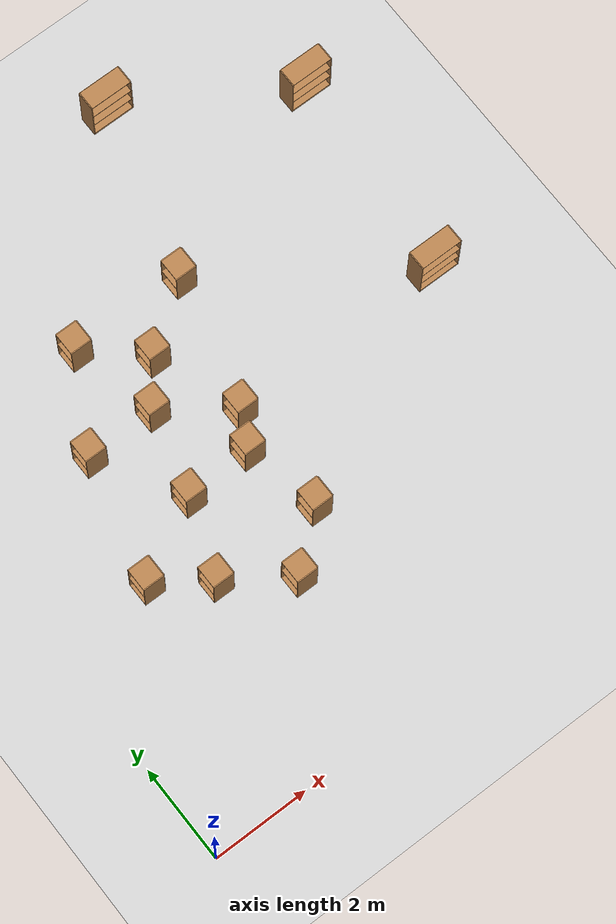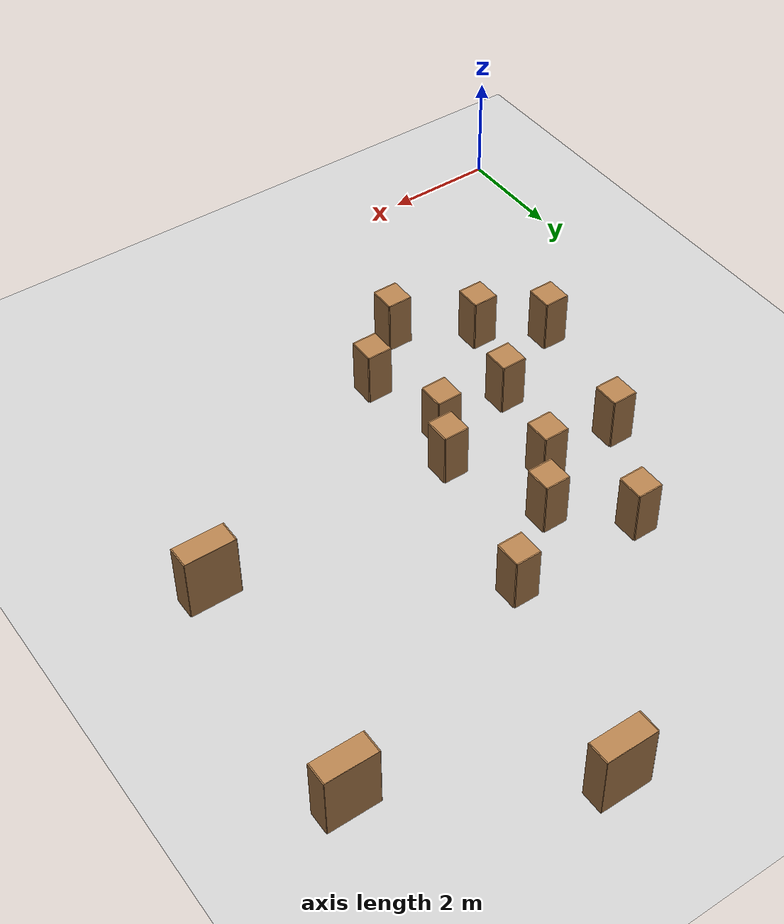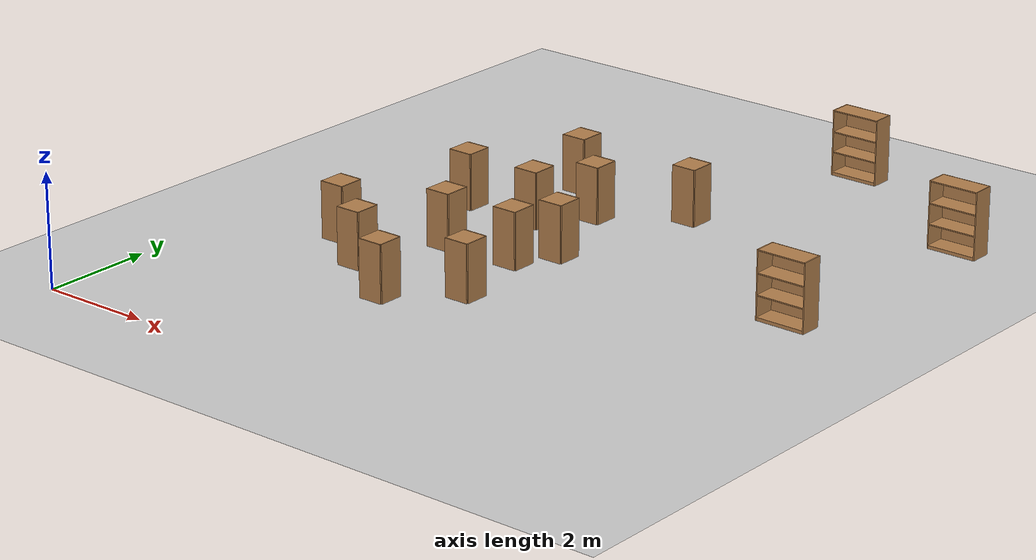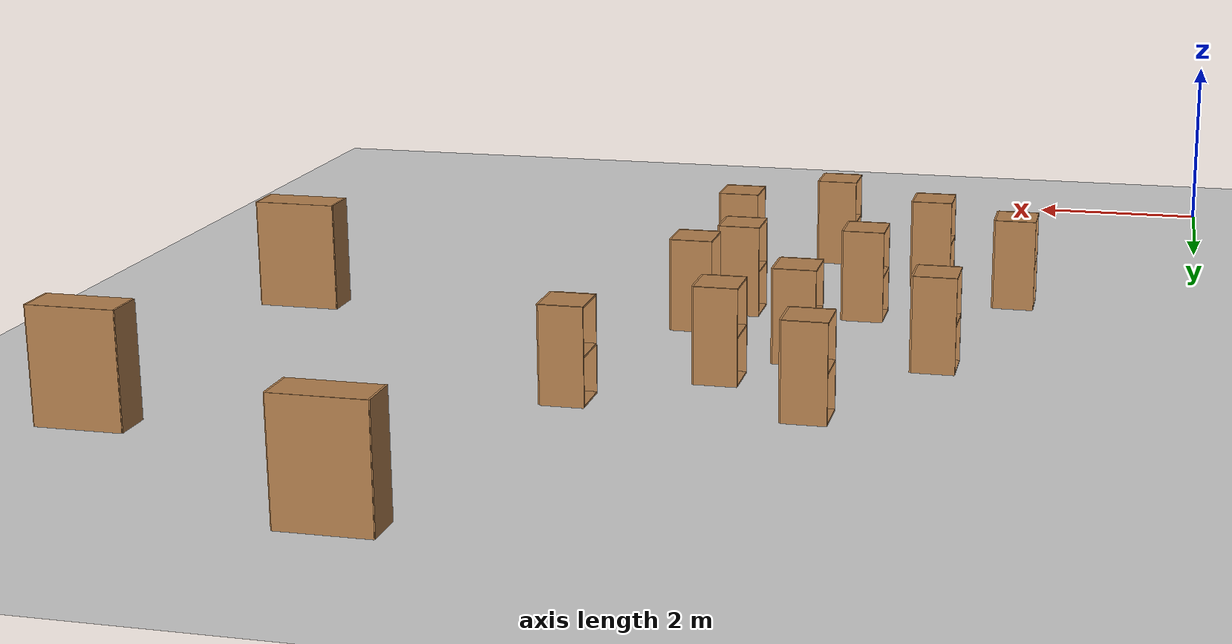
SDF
<sdf version="1.6">
 <world name="default">
  <model name="ground_plane">
   <static>1</static>
   <link name="link">
    <collision name="collision">
     <geometry><plane><normal>0 0 1</normal><size>100 100</size></plane></geometry>
     <surface><friction><ode><mu>100</mu><mu2>50</mu2></ode></friction></surface>
    </collision>
    <visual name="visual">
     <cast_shadows>0</cast_shadows>
     <geometry><plane><normal>0 0 1</normal><size>100 100</size></plane></geometry>
     <material>
      <script><uri>file://media/materials/scripts/gazebo.material</uri><name>Gazebo/Grey</name></script>
     </material>
    </visual>
   </link>
  </model>
  <model name="cabinet_42">
   <static>1</static>
   <link name="cabinet_bottom_plate">
    <inertial>
     <pose>0 0 -1 0 -0 0</pose>
     <inertia><ixx>2.05</ixx><ixy>0</ixy><ixz>0</ixz><iyy>2.05</iyy><iyz>0</iyz><izz>2.05</izz></inertia>
     <mass>25</mass>
    </inertial>
    <collision name="cabinet_bottom_plate_geom">
     <pose>0 0 0.01 0 -0 0</pose>
     <geometry><box><size>0.45 0.45 0.02</size></box></geometry>
    </collision>
    <visual name="cabinet_bottom_plate_geom_visual">
     <pose>0 0 0.01 0 -0 0</pose>
     <geometry><box><size>0.45 0.45 0.02</size></box></geometry>
     <material>
      <script><uri>file://media/materials/scripts/gazebo.material</uri><name>Gazebo/Wood</name></script>
     </material>
    </visual>
    <collision name="cabinet_bottom_plate_geom_cabinet_back_plate">
     <pose>0.235 0 0.51 0 -0 0</pose>
     <geometry><box><size>0.02 0.45 1.02</size></box></geometry>
    </collision>
    <visual name="cabinet_bottom_plate_geom_cabinet_back_plate_visual">
     <pose>0.235 0 0.51 0 -0 0</pose>
     <geometry><box><size>0.02 0.45 1.02</size></box></geometry>
     <material>
      <script><uri>file://media/materials/scripts/gazebo.material</uri><name>Gazebo/Wood</name></script>
     </material>
    </visual>
    <collision name="cabinet_bottom_plate_geom_cabinet_left_plate">
     <pose>0 0.235 0.51 0 -0 0</pose>
     <geometry><box><size>0.45 0.02 1.02</size></box></geometry>
    </collision>
    <visual name="cabinet_bottom_plate_geom_cabinet_left_plate_visual">
     <pose>0 0.235 0.51 0 -0 0</pose>
     <geometry><box><size>0.45 0.02 1.02</size></box></geometry>
     <material>
      <script><uri>file://media/materials/scripts/gazebo.material</uri><name>Gazebo/Wood</name></script>
     </material>
    </visual>
    <collision name="cabinet_bottom_plate_geom_cabinet_middle_plate">
     <pose>0 0 0.51 0 -0 0</pose>
     <geometry><box><size>0.45 0.45 0.02</size></box></geometry>
    </collision>
    <visual name="cabinet_bottom_plate_geom_cabinet_middle_plate_visual">
     <pose>0 0 0.51 0 -0 0</pose>
     <geometry><box><size>0.45 0.45 0.02</size></box></geometry>
     <material>
      <script><uri>file://media/materials/scripts/gazebo.material</uri><name>Gazebo/Wood</name></script>
     </material>
    </visual>
    <collision name="cabinet_bottom_plate_geom_cabinet_right_plate">
     <pose>0 -0.235 0.51 0 -0 0</pose>
     <geometry><box><size>0.45 0.02 1.02</size></box></geometry>
    </collision>
    <visual name="cabinet_bottom_plate_geom_cabinet_right_plate_visual">
     <pose>0 -0.235 0.51 0 -0 0</pose>
     <geometry><box><size>0.45 0.02 1.02</size></box></geometry>
     <material>
      <script><uri>file://media/materials/scripts/gazebo.material</uri><name>Gazebo/Wood</name></script>
     </material>
    </visual>
    <collision name="cabinet_bottom_plate_geom_cabinet_top_plate">
     <pose>0 0 1.01 0 -0 0</pose>
     <geometry><box><size>0.45 0.45 0.02</size></box></geometry>
    </collision>
    <visual name="cabinet_bottom_plate_geom_cabinet_top_plate_visual">
     <pose>0 0 1.01 0 -0 0</pose>
     <geometry><box><size>0.45 0.45 0.02</size></box></geometry>
     <material>
      <script><uri>file://media/materials/scripts/gazebo.material</uri><name>Gazebo/Wood</name></script>
     </material>
    </visual>
   </link>
   <pose>3.64403 9.04463 0 0 -0 0</pose>
  </model>
  <model name="cabinet_43">
   <static>1</static>
   <link name="cabinet_bottom_plate">
    <inertial>
     <pose>0 0 -1 0 -0 0</pose>
     <inertia><ixx>2.05</ixx><ixy>0</ixy><ixz>0</ixz><iyy>2.05</iyy><iyz>0</iyz><izz>2.05</izz></inertia>
     <mass>25</mass>
    </inertial>
    <collision name="cabinet_bottom_plate_geom">
     <pose>0 0 0.01 0 -0 0</pose>
     <geometry><box><size>0.45 0.45 0.02</size></box></geometry>
    </collision>
    <visual name="cabinet_bottom_plate_geom_visual">
     <pose>0 0 0.01 0 -0 0</pose>
     <geometry><box><size>0.45 0.45 0.02</size></box></geometry>
     <material>
      <script><uri>file://media/materials/scripts/gazebo.material</uri><name>Gazebo/Wood</name></script>
     </material>
    </visual>
    <collision name="cabinet_bottom_plate_geom_cabinet_back_plate">
     <pose>0.235 0 0.51 0 -0 0</pose>
     <geometry><box><size>0.02 0.45 1.02</size></box></geometry>
    </collision>
    <visual name="cabinet_bottom_plate_geom_cabinet_back_plate_visual">
     <pose>0.235 0 0.51 0 -0 0</pose>
     <geometry><box><size>0.02 0.45 1.02</size></box></geometry>
     <material>
      <script><uri>file://media/materials/scripts/gazebo.material</uri><name>Gazebo/Wood</name></script>
     </material>
    </visual>
    <collision name="cabinet_bottom_plate_geom_cabinet_left_plate">
     <pose>0 0.235 0.51 0 -0 0</pose>
     <geometry><box><size>0.45 0.02 1.02</size></box></geometry>
    </collision>
    <visual name="cabinet_bottom_plate_geom_cabinet_left_plate_visual">
     <pose>0 0.235 0.51 0 -0 0</pose>
     <geometry><box><size>0.45 0.02 1.02</size></box></geometry>
     <material>
      <script><uri>file://media/materials/scripts/gazebo.material</uri><name>Gazebo/Wood</name></script>
     </material>
    </visual>
    <collision name="cabinet_bottom_plate_geom_cabinet_middle_plate">
     <pose>0 0 0.51 0 -0 0</pose>
     <geometry><box><size>0.45 0.45 0.02</size></box></geometry>
    </collision>
    <visual name="cabinet_bottom_plate_geom_cabinet_middle_plate_visual">
     <pose>0 0 0.51 0 -0 0</pose>
     <geometry><box><size>0.45 0.45 0.02</size></box></geometry>
     <material>
      <script><uri>file://media/materials/scripts/gazebo.material</uri><name>Gazebo/Wood</name></script>
     </material>
    </visual>
    <collision name="cabinet_bottom_plate_geom_cabinet_right_plate">
     <pose>0 -0.235 0.51 0 -0 0</pose>
     <geometry><box><size>0.45 0.02 1.02</size></box></geometry>
    </collision>
    <visual name="cabinet_bottom_plate_geom_cabinet_right_plate_visual">
     <pose>0 -0.235 0.51 0 -0 0</pose>
     <geometry><box><size>0.45 0.02 1.02</size></box></geometry>
     <material>
      <script><uri>file://media/materials/scripts/gazebo.material</uri><name>Gazebo/Wood</name></script>
     </material>
    </visual>
    <collision name="cabinet_bottom_plate_geom_cabinet_top_plate">
     <pose>0 0 1.01 0 -0 0</pose>
     <geometry><box><size>0.45 0.45 0.02</size></box></geometry>
    </collision>
    <visual name="cabinet_bottom_plate_geom_cabinet_top_plate_visual">
     <pose>0 0 1.01 0 -0 0</pose>
     <geometry><box><size>0.45 0.45 0.02</size></box></geometry>
     <material>
      <script><uri>file://media/materials/scripts/gazebo.material</uri><name>Gazebo/Wood</name></script>
     </material>
    </visual>
   </link>
   <pose>4.71028 8.07954 0 0 -0 0</pose>
  </model>
  <model name="cabinet_44">
   <static>1</static>
   <link name="cabinet_bottom_plate">
    <inertial>
     <pose>0 0 -1 0 -0 0</pose>
     <inertia><ixx>2.05</ixx><ixy>0</ixy><ixz>0</ixz><iyy>2.05</iyy><iyz>0</iyz><izz>2.05</izz></inertia>
     <mass>25</mass>
    </inertial>
    <collision name="cabinet_bottom_plate_geom">
     <pose>0 0 0.01 0 -0 0</pose>
     <geometry><box><size>0.45 0.45 0.02</size></box></geometry>
    </collision>
    <visual name="cabinet_bottom_plate_geom_visual">
     <pose>0 0 0.01 0 -0 0</pose>
     <geometry><box><size>0.45 0.45 0.02</size></box></geometry>
     <material>
      <script><uri>file://media/materials/scripts/gazebo.material</uri><name>Gazebo/Wood</name></script>
     </material>
    </visual>
    <collision name="cabinet_bottom_plate_geom_cabinet_back_plate">
     <pose>0.235 0 0.51 0 -0 0</pose>
     <geometry><box><size>0.02 0.45 1.02</size></box></geometry>
    </collision>
    <visual name="cabinet_bottom_plate_geom_cabinet_back_plate_visual">
     <pose>0.235 0 0.51 0 -0 0</pose>
     <geometry><box><size>0.02 0.45 1.02</size></box></geometry>
     <material>
      <script><uri>file://media/materials/scripts/gazebo.material</uri><name>Gazebo/Wood</name></script>
     </material>
    </visual>
    <collision name="cabinet_bottom_plate_geom_cabinet_left_plate">
     <pose>0 0.235 0.51 0 -0 0</pose>
     <geometry><box><size>0.45 0.02 1.02</size></box></geometry>
    </collision>
    <visual name="cabinet_bottom_plate_geom_cabinet_left_plate_visual">
     <pose>0 0.235 0.51 0 -0 0</pose>
     <geometry><box><size>0.45 0.02 1.02</size></box></geometry>
     <material>
      <script><uri>file://media/materials/scripts/gazebo.material</uri><name>Gazebo/Wood</name></script>
     </material>
    </visual>
    <collision name="cabinet_bottom_plate_geom_cabinet_middle_plate">
     <pose>0 0 0.51 0 -0 0</pose>
     <geometry><box><size>0.45 0.45 0.02</size></box></geometry>
    </collision>
    <visual name="cabinet_bottom_plate_geom_cabinet_middle_plate_visual">
     <pose>0 0 0.51 0 -0 0</pose>
     <geometry><box><size>0.45 0.45 0.02</size></box></geometry>
     <material>
      <script><uri>file://media/materials/scripts/gazebo.material</uri><name>Gazebo/Wood</name></script>
     </material>
    </visual>
    <collision name="cabinet_bottom_plate_geom_cabinet_right_plate">
     <pose>0 -0.235 0.51 0 -0 0</pose>
     <geometry><box><size>0.45 0.02 1.02</size></box></geometry>
    </collision>
    <visual name="cabinet_bottom_plate_geom_cabinet_right_plate_visual">
     <pose>0 -0.235 0.51 0 -0 0</pose>
     <geometry><box><size>0.45 0.02 1.02</size></box></geometry>
     <material>
      <script><uri>file://media/materials/scripts/gazebo.material</uri><name>Gazebo/Wood</name></script>
     </material>
    </visual>
    <collision name="cabinet_bottom_plate_geom_cabinet_top_plate">
     <pose>0 0 1.01 0 -0 0</pose>
     <geometry><box><size>0.45 0.45 0.02</size></box></geometry>
    </collision>
    <visual name="cabinet_bottom_plate_geom_cabinet_top_plate_visual">
     <pose>0 0 1.01 0 -0 0</pose>
     <geometry><box><size>0.45 0.45 0.02</size></box></geometry>
     <material>
      <script><uri>file://media/materials/scripts/gazebo.material</uri><name>Gazebo/Wood</name></script>
     </material>
    </visual>
   </link>
   <pose>6.02756 9.02445 0 0 -0 0</pose>
  </model>
  <model name="cabinet_54">
   <static>1</static>
   <link name="cabinet_bottom_plate">
    <inertial>
     <pose>0 0 -1 0 -0 0</pose>
     <inertia><ixx>2.05</ixx><ixy>0</ixy><ixz>0</ixz><iyy>2.05</iyy><iyz>0</iyz><izz>2.05</izz></inertia>
     <mass>25</mass>
    </inertial>
    <collision name="cabinet_bottom_plate_geom">
     <pose>0 0 0.01 0 -0 0</pose>
     <geometry><box><size>0.45 0.45 0.02</size></box></geometry>
    </collision>
    <visual name="cabinet_bottom_plate_geom_visual">
     <pose>0 0 0.01 0 -0 0</pose>
     <geometry><box><size>0.45 0.45 0.02</size></box></geometry>
     <material>
      <script><uri>file://media/materials/scripts/gazebo.material</uri><name>Gazebo/Wood</name></script>
     </material>
    </visual>
    <collision name="cabinet_bottom_plate_geom_cabinet_back_plate">
     <pose>0.235 0 0.51 0 -0 0</pose>
     <geometry><box><size>0.02 0.45 1.02</size></box></geometry>
    </collision>
    <visual name="cabinet_bottom_plate_geom_cabinet_back_plate_visual">
     <pose>0.235 0 0.51 0 -0 0</pose>
     <geometry><box><size>0.02 0.45 1.02</size></box></geometry>
     <material>
      <script><uri>file://media/materials/scripts/gazebo.material</uri><name>Gazebo/Wood</name></script>
     </material>
    </visual>
    <collision name="cabinet_bottom_plate_geom_cabinet_left_plate">
     <pose>0 0.235 0.51 0 -0 0</pose>
     <geometry><box><size>0.45 0.02 1.02</size></box></geometry>
    </collision>
    <visual name="cabinet_bottom_plate_geom_cabinet_left_plate_visual">
     <pose>0 0.235 0.51 0 -0 0</pose>
     <geometry><box><size>0.45 0.02 1.02</size></box></geometry>
     <material>
      <script><uri>file://media/materials/scripts/gazebo.material</uri><name>Gazebo/Wood</name></script>
     </material>
    </visual>
    <collision name="cabinet_bottom_plate_geom_cabinet_middle_plate">
     <pose>0 0 0.51 0 -0 0</pose>
     <geometry><box><size>0.45 0.45 0.02</size></box></geometry>
    </collision>
    <visual name="cabinet_bottom_plate_geom_cabinet_middle_plate_visual">
     <pose>0 0 0.51 0 -0 0</pose>
     <geometry><box><size>0.45 0.45 0.02</size></box></geometry>
     <material>
      <script><uri>file://media/materials/scripts/gazebo.material</uri><name>Gazebo/Wood</name></script>
     </material>
    </visual>
    <collision name="cabinet_bottom_plate_geom_cabinet_right_plate">
     <pose>0 -0.235 0.51 0 -0 0</pose>
     <geometry><box><size>0.45 0.02 1.02</size></box></geometry>
    </collision>
    <visual name="cabinet_bottom_plate_geom_cabinet_right_plate_visual">
     <pose>0 -0.235 0.51 0 -0 0</pose>
     <geometry><box><size>0.45 0.02 1.02</size></box></geometry>
     <material>
      <script><uri>file://media/materials/scripts/gazebo.material</uri><name>Gazebo/Wood</name></script>
     </material>
    </visual>
    <collision name="cabinet_bottom_plate_geom_cabinet_top_plate">
     <pose>0 0 1.01 0 -0 0</pose>
     <geometry><box><size>0.45 0.45 0.02</size></box></geometry>
    </collision>
    <visual name="cabinet_bottom_plate_geom_cabinet_top_plate_visual">
     <pose>0 0 1.01 0 -0 0</pose>
     <geometry><box><size>0.45 0.45 0.02</size></box></geometry>
     <material>
      <script><uri>file://media/materials/scripts/gazebo.material</uri><name>Gazebo/Wood</name></script>
     </material>
    </visual>
   </link>
   <pose>2.62752 7.23276 0 0 -0 0</pose>
  </model>
  <model name="cabinet_55">
   <static>1</static>
   <link name="cabinet_bottom_plate">
    <inertial>
     <pose>0 0 -1 0 -0 0</pose>
     <inertia><ixx>2.05</ixx><ixy>0</ixy><ixz>0</ixz><iyy>2.05</iyy><iyz>0</iyz><izz>2.05</izz></inertia>
     <mass>25</mass>
    </inertial>
    <collision name="cabinet_bottom_plate_geom">
     <pose>0 0 0.01 0 -0 0</pose>
     <geometry><box><size>0.45 0.45 0.02</size></box></geometry>
    </collision>
    <visual name="cabinet_bottom_plate_geom_visual">
     <pose>0 0 0.01 0 -0 0</pose>
     <geometry><box><size>0.45 0.45 0.02</size></box></geometry>
     <material>
      <script><uri>file://media/materials/scripts/gazebo.material</uri><name>Gazebo/Wood</name></script>
     </material>
    </visual>
    <collision name="cabinet_bottom_plate_geom_cabinet_back_plate">
     <pose>0.235 0 0.51 0 -0 0</pose>
     <geometry><box><size>0.02 0.45 1.02</size></box></geometry>
    </collision>
    <visual name="cabinet_bottom_plate_geom_cabinet_back_plate_visual">
     <pose>0.235 0 0.51 0 -0 0</pose>
     <geometry><box><size>0.02 0.45 1.02</size></box></geometry>
     <material>
      <script><uri>file://media/materials/scripts/gazebo.material</uri><name>Gazebo/Wood</name></script>
     </material>
    </visual>
    <collision name="cabinet_bottom_plate_geom_cabinet_left_plate">
     <pose>0 0.235 0.51 0 -0 0</pose>
     <geometry><box><size>0.45 0.02 1.02</size></box></geometry>
    </collision>
    <visual name="cabinet_bottom_plate_geom_cabinet_left_plate_visual">
     <pose>0 0.235 0.51 0 -0 0</pose>
     <geometry><box><size>0.45 0.02 1.02</size></box></geometry>
     <material>
      <script><uri>file://media/materials/scripts/gazebo.material</uri><name>Gazebo/Wood</name></script>
     </material>
    </visual>
    <collision name="cabinet_bottom_plate_geom_cabinet_middle_plate">
     <pose>0 0 0.51 0 -0 0</pose>
     <geometry><box><size>0.45 0.45 0.02</size></box></geometry>
    </collision>
    <visual name="cabinet_bottom_plate_geom_cabinet_middle_plate_visual">
     <pose>0 0 0.51 0 -0 0</pose>
     <geometry><box><size>0.45 0.45 0.02</size></box></geometry>
     <material>
      <script><uri>file://media/materials/scripts/gazebo.material</uri><name>Gazebo/Wood</name></script>
     </material>
    </visual>
    <collision name="cabinet_bottom_plate_geom_cabinet_right_plate">
     <pose>0 -0.235 0.51 0 -0 0</pose>
     <geometry><box><size>0.45 0.02 1.02</size></box></geometry>
    </collision>
    <visual name="cabinet_bottom_plate_geom_cabinet_right_plate_visual">
     <pose>0 -0.235 0.51 0 -0 0</pose>
     <geometry><box><size>0.45 0.02 1.02</size></box></geometry>
     <material>
      <script><uri>file://media/materials/scripts/gazebo.material</uri><name>Gazebo/Wood</name></script>
     </material>
    </visual>
    <collision name="cabinet_bottom_plate_geom_cabinet_top_plate">
     <pose>0 0 1.01 0 -0 0</pose>
     <geometry><box><size>0.45 0.45 0.02</size></box></geometry>
    </collision>
    <visual name="cabinet_bottom_plate_geom_cabinet_top_plate_visual">
     <pose>0 0 1.01 0 -0 0</pose>
     <geometry><box><size>0.45 0.45 0.02</size></box></geometry>
     <material>
      <script><uri>file://media/materials/scripts/gazebo.material</uri><name>Gazebo/Wood</name></script>
     </material>
    </visual>
   </link>
   <pose>4.06503 7.23826 0 0 -0 0</pose>
  </model>
  <model name="cabinet_56">
   <static>1</static>
   <link name="cabinet_bottom_plate">
    <inertial>
     <pose>0 0 -1 0 -0 0</pose>
     <inertia><ixx>2.05</ixx><ixy>0</ixy><ixz>0</ixz><iyy>2.05</iyy><iyz>0</iyz><izz>2.05</izz></inertia>
     <mass>25</mass>
    </inertial>
    <collision name="cabinet_bottom_plate_geom">
     <pose>0 0 0.01 0 -0 0</pose>
     <geometry><box><size>0.45 0.45 0.02</size></box></geometry>
    </collision>
    <visual name="cabinet_bottom_plate_geom_visual">
     <pose>0 0 0.01 0 -0 0</pose>
     <geometry><box><size>0.45 0.45 0.02</size></box></geometry>
     <material>
      <script><uri>file://media/materials/scripts/gazebo.material</uri><name>Gazebo/Wood</name></script>
     </material>
    </visual>
    <collision name="cabinet_bottom_plate_geom_cabinet_back_plate">
     <pose>0.235 0 0.51 0 -0 0</pose>
     <geometry><box><size>0.02 0.45 1.02</size></box></geometry>
    </collision>
    <visual name="cabinet_bottom_plate_geom_cabinet_back_plate_visual">
     <pose>0.235 0 0.51 0 -0 0</pose>
     <geometry><box><size>0.02 0.45 1.02</size></box></geometry>
     <material>
      <script><uri>file://media/materials/scripts/gazebo.material</uri><name>Gazebo/Wood</name></script>
     </material>
    </visual>
    <collision name="cabinet_bottom_plate_geom_cabinet_left_plate">
     <pose>0 0.235 0.51 0 -0 0</pose>
     <geometry><box><size>0.45 0.02 1.02</size></box></geometry>
    </collision>
    <visual name="cabinet_bottom_plate_geom_cabinet_left_plate_visual">
     <pose>0 0.235 0.51 0 -0 0</pose>
     <geometry><box><size>0.45 0.02 1.02</size></box></geometry>
     <material>
      <script><uri>file://media/materials/scripts/gazebo.material</uri><name>Gazebo/Wood</name></script>
     </material>
    </visual>
    <collision name="cabinet_bottom_plate_geom_cabinet_middle_plate">
     <pose>0 0 0.51 0 -0 0</pose>
     <geometry><box><size>0.45 0.45 0.02</size></box></geometry>
    </collision>
    <visual name="cabinet_bottom_plate_geom_cabinet_middle_plate_visual">
     <pose>0 0 0.51 0 -0 0</pose>
     <geometry><box><size>0.45 0.45 0.02</size></box></geometry>
     <material>
      <script><uri>file://media/materials/scripts/gazebo.material</uri><name>Gazebo/Wood</name></script>
     </material>
    </visual>
    <collision name="cabinet_bottom_plate_geom_cabinet_right_plate">
     <pose>0 -0.235 0.51 0 -0 0</pose>
     <geometry><box><size>0.45 0.02 1.02</size></box></geometry>
    </collision>
    <visual name="cabinet_bottom_plate_geom_cabinet_right_plate_visual">
     <pose>0 -0.235 0.51 0 -0 0</pose>
     <geometry><box><size>0.45 0.02 1.02</size></box></geometry>
     <material>
      <script><uri>file://media/materials/scripts/gazebo.material</uri><name>Gazebo/Wood</name></script>
     </material>
    </visual>
    <collision name="cabinet_bottom_plate_geom_cabinet_top_plate">
     <pose>0 0 1.01 0 -0 0</pose>
     <geometry><box><size>0.45 0.45 0.02</size></box></geometry>
    </collision>
    <visual name="cabinet_bottom_plate_geom_cabinet_top_plate_visual">
     <pose>0 0 1.01 0 -0 0</pose>
     <geometry><box><size>0.45 0.45 0.02</size></box></geometry>
     <material>
      <script><uri>file://media/materials/scripts/gazebo.material</uri><name>Gazebo/Wood</name></script>
     </material>
    </visual>
   </link>
   <pose>5.36656 6.29653 0 0 -0 0</pose>
  </model>
  <model name="cabinet_67">
   <static>1</static>
   <link name="cabinet_bottom_plate">
    <inertial>
     <pose>0 0 -1 0 -0 0</pose>
     <inertia><ixx>2.05</ixx><ixy>0</ixy><ixz>0</ixz><iyy>2.05</iyy><iyz>0</iyz><izz>2.05</izz></inertia>
     <mass>25</mass>
    </inertial>
    <collision name="cabinet_bottom_plate_geom">
     <pose>0 0 0.01 0 -0 0</pose>
     <geometry><box><size>0.45 0.45 0.02</size></box></geometry>
    </collision>
    <visual name="cabinet_bottom_plate_geom_visual">
     <pose>0 0 0.01 0 -0 0</pose>
     <geometry><box><size>0.45 0.45 0.02</size></box></geometry>
     <material>
      <script><uri>file://media/materials/scripts/gazebo.material</uri><name>Gazebo/Wood</name></script>
     </material>
    </visual>
    <collision name="cabinet_bottom_plate_geom_cabinet_back_plate">
     <pose>0.235 0 0.51 0 -0 0</pose>
     <geometry><box><size>0.02 0.45 1.02</size></box></geometry>
    </collision>
    <visual name="cabinet_bottom_plate_geom_cabinet_back_plate_visual">
     <pose>0.235 0 0.51 0 -0 0</pose>
     <geometry><box><size>0.02 0.45 1.02</size></box></geometry>
     <material>
      <script><uri>file://media/materials/scripts/gazebo.material</uri><name>Gazebo/Wood</name></script>
     </material>
    </visual>
    <collision name="cabinet_bottom_plate_geom_cabinet_left_plate">
     <pose>0 0.235 0.51 0 -0 0</pose>
     <geometry><box><size>0.45 0.02 1.02</size></box></geometry>
    </collision>
    <visual name="cabinet_bottom_plate_geom_cabinet_left_plate_visual">
     <pose>0 0.235 0.51 0 -0 0</pose>
     <geometry><box><size>0.45 0.02 1.02</size></box></geometry>
     <material>
      <script><uri>file://media/materials/scripts/gazebo.material</uri><name>Gazebo/Wood</name></script>
     </material>
    </visual>
    <collision name="cabinet_bottom_plate_geom_cabinet_middle_plate">
     <pose>0 0 0.51 0 -0 0</pose>
     <geometry><box><size>0.45 0.45 0.02</size></box></geometry>
    </collision>
    <visual name="cabinet_bottom_plate_geom_cabinet_middle_plate_visual">
     <pose>0 0 0.51 0 -0 0</pose>
     <geometry><box><size>0.45 0.45 0.02</size></box></geometry>
     <material>
      <script><uri>file://media/materials/scripts/gazebo.material</uri><name>Gazebo/Wood</name></script>
     </material>
    </visual>
    <collision name="cabinet_bottom_plate_geom_cabinet_right_plate">
     <pose>0 -0.235 0.51 0 -0 0</pose>
     <geometry><box><size>0.45 0.02 1.02</size></box></geometry>
    </collision>
    <visual name="cabinet_bottom_plate_geom_cabinet_right_plate_visual">
     <pose>0 -0.235 0.51 0 -0 0</pose>
     <geometry><box><size>0.45 0.02 1.02</size></box></geometry>
     <material>
      <script><uri>file://media/materials/scripts/gazebo.material</uri><name>Gazebo/Wood</name></script>
     </material>
    </visual>
    <collision name="cabinet_bottom_plate_geom_cabinet_top_plate">
     <pose>0 0 1.01 0 -0 0</pose>
     <geometry><box><size>0.45 0.45 0.02</size></box></geometry>
    </collision>
    <visual name="cabinet_bottom_plate_geom_cabinet_top_plate_visual">
     <pose>0 0 1.01 0 -0 0</pose>
     <geometry><box><size>0.45 0.45 0.02</size></box></geometry>
     <material>
      <script><uri>file://media/materials/scripts/gazebo.material</uri><name>Gazebo/Wood</name></script>
     </material>
    </visual>
   </link>
   <pose>2.01392 4.68272 0 0 -0 0</pose>
  </model>
  <model name="cabinet_68">
   <static>1</static>
   <link name="cabinet_bottom_plate">
    <inertial>
     <pose>0 0 -1 0 -0 0</pose>
     <inertia><ixx>2.05</ixx><ixy>0</ixy><ixz>0</ixz><iyy>2.05</iyy><iyz>0</iyz><izz>2.05</izz></inertia>
     <mass>25</mass>
    </inertial>
    <collision name="cabinet_bottom_plate_geom">
     <pose>0 0 0.01 0 -0 0</pose>
     <geometry><box><size>0.45 0.45 0.02</size></box></geometry>
    </collision>
    <visual name="cabinet_bottom_plate_geom_visual">
     <pose>0 0 0.01 0 -0 0</pose>
     <geometry><box><size>0.45 0.45 0.02</size></box></geometry>
     <material>
      <script><uri>file://media/materials/scripts/gazebo.material</uri><name>Gazebo/Wood</name></script>
     </material>
    </visual>
    <collision name="cabinet_bottom_plate_geom_cabinet_back_plate">
     <pose>0.235 0 0.51 0 -0 0</pose>
     <geometry><box><size>0.02 0.45 1.02</size></box></geometry>
    </collision>
    <visual name="cabinet_bottom_plate_geom_cabinet_back_plate_visual">
     <pose>0.235 0 0.51 0 -0 0</pose>
     <geometry><box><size>0.02 0.45 1.02</size></box></geometry>
     <material>
      <script><uri>file://media/materials/scripts/gazebo.material</uri><name>Gazebo/Wood</name></script>
     </material>
    </visual>
    <collision name="cabinet_bottom_plate_geom_cabinet_left_plate">
     <pose>0 0.235 0.51 0 -0 0</pose>
     <geometry><box><size>0.45 0.02 1.02</size></box></geometry>
    </collision>
    <visual name="cabinet_bottom_plate_geom_cabinet_left_plate_visual">
     <pose>0 0.235 0.51 0 -0 0</pose>
     <geometry><box><size>0.45 0.02 1.02</size></box></geometry>
     <material>
      <script><uri>file://media/materials/scripts/gazebo.material</uri><name>Gazebo/Wood</name></script>
     </material>
    </visual>
    <collision name="cabinet_bottom_plate_geom_cabinet_middle_plate">
     <pose>0 0 0.51 0 -0 0</pose>
     <geometry><box><size>0.45 0.45 0.02</size></box></geometry>
    </collision>
    <visual name="cabinet_bottom_plate_geom_cabinet_middle_plate_visual">
     <pose>0 0 0.51 0 -0 0</pose>
     <geometry><box><size>0.45 0.45 0.02</size></box></geometry>
     <material>
      <script><uri>file://media/materials/scripts/gazebo.material</uri><name>Gazebo/Wood</name></script>
     </material>
    </visual>
    <collision name="cabinet_bottom_plate_geom_cabinet_right_plate">
     <pose>0 -0.235 0.51 0 -0 0</pose>
     <geometry><box><size>0.45 0.02 1.02</size></box></geometry>
    </collision>
    <visual name="cabinet_bottom_plate_geom_cabinet_right_plate_visual">
     <pose>0 -0.235 0.51 0 -0 0</pose>
     <geometry><box><size>0.45 0.02 1.02</size></box></geometry>
     <material>
      <script><uri>file://media/materials/scripts/gazebo.material</uri><name>Gazebo/Wood</name></script>
     </material>
    </visual>
    <collision name="cabinet_bottom_plate_geom_cabinet_top_plate">
     <pose>0 0 1.01 0 -0 0</pose>
     <geometry><box><size>0.45 0.45 0.02</size></box></geometry>
    </collision>
    <visual name="cabinet_bottom_plate_geom_cabinet_top_plate_visual">
     <pose>0 0 1.01 0 -0 0</pose>
     <geometry><box><size>0.45 0.45 0.02</size></box></geometry>
     <material>
      <script><uri>file://media/materials/scripts/gazebo.material</uri><name>Gazebo/Wood</name></script>
     </material>
    </visual>
   </link>
   <pose>3.60375 5.52462 0 0 -0 0</pose>
  </model>
  <model name="cabinet_69">
   <static>1</static>
   <link name="cabinet_bottom_plate">
    <inertial>
     <pose>0 0 -1 0 -0 0</pose>
     <inertia><ixx>2.05</ixx><ixy>0</ixy><ixz>0</ixz><iyy>2.05</iyy><iyz>0</iyz><izz>2.05</izz></inertia>
     <mass>25</mass>
    </inertial>
    <collision name="cabinet_bottom_plate_geom">
     <pose>0 0 0.01 0 -0 0</pose>
     <geometry><box><size>0.45 0.45 0.02</size></box></geometry>
    </collision>
    <visual name="cabinet_bottom_plate_geom_visual">
     <pose>0 0 0.01 0 -0 0</pose>
     <geometry><box><size>0.45 0.45 0.02</size></box></geometry>
     <material>
      <script><uri>file://media/materials/scripts/gazebo.material</uri><name>Gazebo/Wood</name></script>
     </material>
    </visual>
    <collision name="cabinet_bottom_plate_geom_cabinet_back_plate">
     <pose>0.235 0 0.51 0 -0 0</pose>
     <geometry><box><size>0.02 0.45 1.02</size></box></geometry>
    </collision>
    <visual name="cabinet_bottom_plate_geom_cabinet_back_plate_visual">
     <pose>0.235 0 0.51 0 -0 0</pose>
     <geometry><box><size>0.02 0.45 1.02</size></box></geometry>
     <material>
      <script><uri>file://media/materials/scripts/gazebo.material</uri><name>Gazebo/Wood</name></script>
     </material>
    </visual>
    <collision name="cabinet_bottom_plate_geom_cabinet_left_plate">
     <pose>0 0.235 0.51 0 -0 0</pose>
     <geometry><box><size>0.45 0.02 1.02</size></box></geometry>
    </collision>
    <visual name="cabinet_bottom_plate_geom_cabinet_left_plate_visual">
     <pose>0 0.235 0.51 0 -0 0</pose>
     <geometry><box><size>0.45 0.02 1.02</size></box></geometry>
     <material>
      <script><uri>file://media/materials/scripts/gazebo.material</uri><name>Gazebo/Wood</name></script>
     </material>
    </visual>
    <collision name="cabinet_bottom_plate_geom_cabinet_middle_plate">
     <pose>0 0 0.51 0 -0 0</pose>
     <geometry><box><size>0.45 0.45 0.02</size></box></geometry>
    </collision>
    <visual name="cabinet_bottom_plate_geom_cabinet_middle_plate_visual">
     <pose>0 0 0.51 0 -0 0</pose>
     <geometry><box><size>0.45 0.45 0.02</size></box></geometry>
     <material>
      <script><uri>file://media/materials/scripts/gazebo.material</uri><name>Gazebo/Wood</name></script>
     </material>
    </visual>
    <collision name="cabinet_bottom_plate_geom_cabinet_right_plate">
     <pose>0 -0.235 0.51 0 -0 0</pose>
     <geometry><box><size>0.45 0.02 1.02</size></box></geometry>
    </collision>
    <visual name="cabinet_bottom_plate_geom_cabinet_right_plate_visual">
     <pose>0 -0.235 0.51 0 -0 0</pose>
     <geometry><box><size>0.45 0.02 1.02</size></box></geometry>
     <material>
      <script><uri>file://media/materials/scripts/gazebo.material</uri><name>Gazebo/Wood</name></script>
     </material>
    </visual>
    <collision name="cabinet_bottom_plate_geom_cabinet_top_plate">
     <pose>0 0 1.01 0 -0 0</pose>
     <geometry><box><size>0.45 0.45 0.02</size></box></geometry>
    </collision>
    <visual name="cabinet_bottom_plate_geom_cabinet_top_plate_visual">
     <pose>0 0 1.01 0 -0 0</pose>
     <geometry><box><size>0.45 0.45 0.02</size></box></geometry>
     <material>
      <script><uri>file://media/materials/scripts/gazebo.material</uri><name>Gazebo/Wood</name></script>
     </material>
    </visual>
   </link>
   <pose>4.98486 5.58529 0 0 -0 0</pose>
  </model>
  <model name="cabinet_80">
   <static>1</static>
   <link name="cabinet_bottom_plate">
    <inertial>
     <pose>0 0 -1 0 -0 0</pose>
     <inertia><ixx>2.05</ixx><ixy>0</ixy><ixz>0</ixz><iyy>2.05</iyy><iyz>0</iyz><izz>2.05</izz></inertia>
     <mass>25</mass>
    </inertial>
    <collision name="cabinet_bottom_plate_geom">
     <pose>0 0 0.01 0 -0 0</pose>
     <geometry><box><size>0.45 0.45 0.02</size></box></geometry>
    </collision>
    <visual name="cabinet_bottom_plate_geom_visual">
     <pose>0 0 0.01 0 -0 0</pose>
     <geometry><box><size>0.45 0.45 0.02</size></box></geometry>
     <material>
      <script><uri>file://media/materials/scripts/gazebo.material</uri><name>Gazebo/Wood</name></script>
     </material>
    </visual>
    <collision name="cabinet_bottom_plate_geom_cabinet_back_plate">
     <pose>0.235 0 0.51 0 -0 0</pose>
     <geometry><box><size>0.02 0.45 1.02</size></box></geometry>
    </collision>
    <visual name="cabinet_bottom_plate_geom_cabinet_back_plate_visual">
     <pose>0.235 0 0.51 0 -0 0</pose>
     <geometry><box><size>0.02 0.45 1.02</size></box></geometry>
     <material>
      <script><uri>file://media/materials/scripts/gazebo.material</uri><name>Gazebo/Wood</name></script>
     </material>
    </visual>
    <collision name="cabinet_bottom_plate_geom_cabinet_left_plate">
     <pose>0 0.235 0.51 0 -0 0</pose>
     <geometry><box><size>0.45 0.02 1.02</size></box></geometry>
    </collision>
    <visual name="cabinet_bottom_plate_geom_cabinet_left_plate_visual">
     <pose>0 0.235 0.51 0 -0 0</pose>
     <geometry><box><size>0.45 0.02 1.02</size></box></geometry>
     <material>
      <script><uri>file://media/materials/scripts/gazebo.material</uri><name>Gazebo/Wood</name></script>
     </material>
    </visual>
    <collision name="cabinet_bottom_plate_geom_cabinet_middle_plate">
     <pose>0 0 0.51 0 -0 0</pose>
     <geometry><box><size>0.45 0.45 0.02</size></box></geometry>
    </collision>
    <visual name="cabinet_bottom_plate_geom_cabinet_middle_plate_visual">
     <pose>0 0 0.51 0 -0 0</pose>
     <geometry><box><size>0.45 0.45 0.02</size></box></geometry>
     <material>
      <script><uri>file://media/materials/scripts/gazebo.material</uri><name>Gazebo/Wood</name></script>
     </material>
    </visual>
    <collision name="cabinet_bottom_plate_geom_cabinet_right_plate">
     <pose>0 -0.235 0.51 0 -0 0</pose>
     <geometry><box><size>0.45 0.02 1.02</size></box></geometry>
    </collision>
    <visual name="cabinet_bottom_plate_geom_cabinet_right_plate_visual">
     <pose>0 -0.235 0.51 0 -0 0</pose>
     <geometry><box><size>0.45 0.02 1.02</size></box></geometry>
     <material>
      <script><uri>file://media/materials/scripts/gazebo.material</uri><name>Gazebo/Wood</name></script>
     </material>
    </visual>
    <collision name="cabinet_bottom_plate_geom_cabinet_top_plate">
     <pose>0 0 1.01 0 -0 0</pose>
     <geometry><box><size>0.45 0.45 0.02</size></box></geometry>
    </collision>
    <visual name="cabinet_bottom_plate_geom_cabinet_top_plate_visual">
     <pose>0 0 1.01 0 -0 0</pose>
     <geometry><box><size>0.45 0.45 0.02</size></box></geometry>
     <material>
      <script><uri>file://media/materials/scripts/gazebo.material</uri><name>Gazebo/Wood</name></script>
     </material>
    </visual>
   </link>
   <pose>3.02813 3.96225 0 0 -0 0</pose>
  </model>
  <model name="cabinet_81">
   <static>1</static>
   <link name="cabinet_bottom_plate">
    <inertial>
     <pose>0 0 -1 0 -0 0</pose>
     <inertia><ixx>2.05</ixx><ixy>0</ixy><ixz>0</ixz><iyy>2.05</iyy><iyz>0</iyz><izz>2.05</izz></inertia>
     <mass>25</mass>
    </inertial>
    <collision name="cabinet_bottom_plate_geom">
     <pose>0 0 0.01 0 -0 0</pose>
     <geometry><box><size>0.45 0.45 0.02</size></box></geometry>
    </collision>
    <visual name="cabinet_bottom_plate_geom_visual">
     <pose>0 0 0.01 0 -0 0</pose>
     <geometry><box><size>0.45 0.45 0.02</size></box></geometry>
     <material>
      <script><uri>file://media/materials/scripts/gazebo.material</uri><name>Gazebo/Wood</name></script>
     </material>
    </visual>
    <collision name="cabinet_bottom_plate_geom_cabinet_back_plate">
     <pose>0.235 0 0.51 0 -0 0</pose>
     <geometry><box><size>0.02 0.45 1.02</size></box></geometry>
    </collision>
    <visual name="cabinet_bottom_plate_geom_cabinet_back_plate_visual">
     <pose>0.235 0 0.51 0 -0 0</pose>
     <geometry><box><size>0.02 0.45 1.02</size></box></geometry>
     <material>
      <script><uri>file://media/materials/scripts/gazebo.material</uri><name>Gazebo/Wood</name></script>
     </material>
    </visual>
    <collision name="cabinet_bottom_plate_geom_cabinet_left_plate">
     <pose>0 0.235 0.51 0 -0 0</pose>
     <geometry><box><size>0.45 0.02 1.02</size></box></geometry>
    </collision>
    <visual name="cabinet_bottom_plate_geom_cabinet_left_plate_visual">
     <pose>0 0.235 0.51 0 -0 0</pose>
     <geometry><box><size>0.45 0.02 1.02</size></box></geometry>
     <material>
      <script><uri>file://media/materials/scripts/gazebo.material</uri><name>Gazebo/Wood</name></script>
     </material>
    </visual>
    <collision name="cabinet_bottom_plate_geom_cabinet_middle_plate">
     <pose>0 0 0.51 0 -0 0</pose>
     <geometry><box><size>0.45 0.45 0.02</size></box></geometry>
    </collision>
    <visual name="cabinet_bottom_plate_geom_cabinet_middle_plate_visual">
     <pose>0 0 0.51 0 -0 0</pose>
     <geometry><box><size>0.45 0.45 0.02</size></box></geometry>
     <material>
      <script><uri>file://media/materials/scripts/gazebo.material</uri><name>Gazebo/Wood</name></script>
     </material>
    </visual>
    <collision name="cabinet_bottom_plate_geom_cabinet_right_plate">
     <pose>0 -0.235 0.51 0 -0 0</pose>
     <geometry><box><size>0.45 0.02 1.02</size></box></geometry>
    </collision>
    <visual name="cabinet_bottom_plate_geom_cabinet_right_plate_visual">
     <pose>0 -0.235 0.51 0 -0 0</pose>
     <geometry><box><size>0.45 0.02 1.02</size></box></geometry>
     <material>
      <script><uri>file://media/materials/scripts/gazebo.material</uri><name>Gazebo/Wood</name></script>
     </material>
    </visual>
    <collision name="cabinet_bottom_plate_geom_cabinet_top_plate">
     <pose>0 0 1.01 0 -0 0</pose>
     <geometry><box><size>0.45 0.45 0.02</size></box></geometry>
    </collision>
    <visual name="cabinet_bottom_plate_geom_cabinet_top_plate_visual">
     <pose>0 0 1.01 0 -0 0</pose>
     <geometry><box><size>0.45 0.45 0.02</size></box></geometry>
     <material>
      <script><uri>file://media/materials/scripts/gazebo.material</uri><name>Gazebo/Wood</name></script>
     </material>
    </visual>
   </link>
   <pose>4.27206 3.12621 0 0 -0 0</pose>
  </model>
  <model name="cabinet_82">
   <static>1</static>
   <link name="cabinet_bottom_plate">
    <inertial>
     <pose>0 0 -1 0 -0 0</pose>
     <inertia><ixx>2.05</ixx><ixy>0</ixy><ixz>0</ixz><iyy>2.05</iyy><iyz>0</iyz><izz>2.05</izz></inertia>
     <mass>25</mass>
    </inertial>
    <collision name="cabinet_bottom_plate_geom">
     <pose>0 0 0.01 0 -0 0</pose>
     <geometry><box><size>0.45 0.45 0.02</size></box></geometry>
    </collision>
    <visual name="cabinet_bottom_plate_geom_visual">
     <pose>0 0 0.01 0 -0 0</pose>
     <geometry><box><size>0.45 0.45 0.02</size></box></geometry>
     <material>
      <script><uri>file://media/materials/scripts/gazebo.material</uri><name>Gazebo/Wood</name></script>
     </material>
    </visual>
    <collision name="cabinet_bottom_plate_geom_cabinet_back_plate">
     <pose>0.235 0 0.51 0 -0 0</pose>
     <geometry><box><size>0.02 0.45 1.02</size></box></geometry>
    </collision>
    <visual name="cabinet_bottom_plate_geom_cabinet_back_plate_visual">
     <pose>0.235 0 0.51 0 -0 0</pose>
     <geometry><box><size>0.02 0.45 1.02</size></box></geometry>
     <material>
      <script><uri>file://media/materials/scripts/gazebo.material</uri><name>Gazebo/Wood</name></script>
     </material>
    </visual>
    <collision name="cabinet_bottom_plate_geom_cabinet_left_plate">
     <pose>0 0.235 0.51 0 -0 0</pose>
     <geometry><box><size>0.45 0.02 1.02</size></box></geometry>
    </collision>
    <visual name="cabinet_bottom_plate_geom_cabinet_left_plate_visual">
     <pose>0 0.235 0.51 0 -0 0</pose>
     <geometry><box><size>0.45 0.02 1.02</size></box></geometry>
     <material>
      <script><uri>file://media/materials/scripts/gazebo.material</uri><name>Gazebo/Wood</name></script>
     </material>
    </visual>
    <collision name="cabinet_bottom_plate_geom_cabinet_middle_plate">
     <pose>0 0 0.51 0 -0 0</pose>
     <geometry><box><size>0.45 0.45 0.02</size></box></geometry>
    </collision>
    <visual name="cabinet_bottom_plate_geom_cabinet_middle_plate_visual">
     <pose>0 0 0.51 0 -0 0</pose>
     <geometry><box><size>0.45 0.45 0.02</size></box></geometry>
     <material>
      <script><uri>file://media/materials/scripts/gazebo.material</uri><name>Gazebo/Wood</name></script>
     </material>
    </visual>
    <collision name="cabinet_bottom_plate_geom_cabinet_right_plate">
     <pose>0 -0.235 0.51 0 -0 0</pose>
     <geometry><box><size>0.45 0.02 1.02</size></box></geometry>
    </collision>
    <visual name="cabinet_bottom_plate_geom_cabinet_right_plate_visual">
     <pose>0 -0.235 0.51 0 -0 0</pose>
     <geometry><box><size>0.45 0.02 1.02</size></box></geometry>
     <material>
      <script><uri>file://media/materials/scripts/gazebo.material</uri><name>Gazebo/Wood</name></script>
     </material>
    </visual>
    <collision name="cabinet_bottom_plate_geom_cabinet_top_plate">
     <pose>0 0 1.01 0 -0 0</pose>
     <geometry><box><size>0.45 0.45 0.02</size></box></geometry>
    </collision>
    <visual name="cabinet_bottom_plate_geom_cabinet_top_plate_visual">
     <pose>0 0 1.01 0 -0 0</pose>
     <geometry><box><size>0.45 0.45 0.02</size></box></geometry>
     <material>
      <script><uri>file://media/materials/scripts/gazebo.material</uri><name>Gazebo/Wood</name></script>
     </material>
    </visual>
   </link>
   <pose>5.30932 4.01622 0 0 -0 0</pose>
  </model>
  <model name="bookshelf_0">
   <static>1</static>
   <link name="link">
    <inertial><mass>1</mass></inertial>
    <collision name="back">
     <pose>0 0.005 0.6 0 -0 0</pose>
     <geometry><box><size>0.9 0.01 1.2</size></box></geometry>
    </collision>
    <visual name="visual1">
     <pose>0 0.005 0.6 0 -0 0</pose>
     <geometry><box><size>0.9 0.01 1.2</size></box></geometry>
     <material>
      <script><uri>file://media/materials/scripts/gazebo.material</uri><name>Gazebo/Wood</name></script>
     </material>
    </visual>
    <collision name="left_side">
     <pose>0.45 -0.195 0.6 0 -0 0</pose>
     <geometry><box><size>0.02 0.4 1.2</size></box></geometry>
    </collision>
    <visual name="visual2">
     <pose>0.45 -0.195 0.6 0 -0 0</pose>
     <geometry><box><size>0.02 0.4 1.2</size></box></geometry>
     <material>
      <script><uri>file://media/materials/scripts/gazebo.material</uri><name>Gazebo/Wood</name></script>
     </material>
    </visual>
    <collision name="right_side">
     <pose>-0.45 -0.195 0.6 0 -0 0</pose>
     <geometry><box><size>0.02 0.4 1.2</size></box></geometry>
    </collision>
    <visual name="visual3">
     <pose>-0.45 -0.195 0.6 0 -0 0</pose>
     <geometry><box><size>0.02 0.4 1.2</size></box></geometry>
     <material>
      <script><uri>file://media/materials/scripts/gazebo.material</uri><name>Gazebo/Wood</name></script>
     </material>
    </visual>
    <collision name="bottom">
     <pose>0 -0.195 0.03 0 -0 0</pose>
     <geometry><box><size>0.88 0.4 0.06</size></box></geometry>
    </collision>
    <visual name="visual4">
     <pose>0 -0.195 0.03 0 -0 0</pose>
     <geometry><box><size>0.88 0.4 0.06</size></box></geometry>
     <material>
      <script><uri>file://media/materials/scripts/gazebo.material</uri><name>Gazebo/Wood</name></script>
     </material>
    </visual>
    <collision name="top">
     <pose>0 -0.195 1.19 0 -0 0</pose>
     <geometry><box><size>0.88 0.4 0.02</size></box></geometry>
    </collision>
    <visual name="visual5">
     <pose>0 -0.195 1.19 0 -0 0</pose>
     <geometry><box><size>0.88 0.4 0.02</size></box></geometry>
     <material>
      <script><uri>file://media/materials/scripts/gazebo.material</uri><name>Gazebo/Wood</name></script>
     </material>
    </visual>
    <collision name="low_shelf">
     <pose>0 -0.195 0.43 0 -0 0</pose>
     <geometry><box><size>0.88 0.4 0.02</size></box></geometry>
    </collision>
    <visual name="visual6">
     <pose>0 -0.195 0.43 0 -0 0</pose>
     <geometry><box><size>0.88 0.4 0.02</size></box></geometry>
     <material>
      <script><uri>file://media/materials/scripts/gazebo.material</uri><name>Gazebo/Wood</name></script>
     </material>
    </visual>
    <collision name="high_shelf">
     <pose>0 -0.195 0.8 0 -0 0</pose>
     <geometry><box><size>0.88 0.4 0.02</size></box></geometry>
    </collision>
    <visual name="visual7">
     <pose>0 -0.195 0.8 0 -0 0</pose>
     <geometry><box><size>0.88 0.4 0.02</size></box></geometry>
     <material>
      <script><uri>file://media/materials/scripts/gazebo.material</uri><name>Gazebo/Wood</name></script>
     </material>
    </visual>
   </link>
   <pose>9.92497 6.54905 0 0 -0 0</pose>
  </model>
  <model name="bookshelf_3">
   <static>1</static>
   <link name="link">
    <inertial><mass>1</mass></inertial>
    <collision name="back">
     <pose>0 0.005 0.6 0 -0 0</pose>
     <geometry><box><size>0.9 0.01 1.2</size></box></geometry>
    </collision>
    <visual name="visual1">
     <pose>0 0.005 0.6 0 -0 0</pose>
     <geometry><box><size>0.9 0.01 1.2</size></box></geometry>
     <material>
      <script><uri>file://media/materials/scripts/gazebo.material</uri><name>Gazebo/Wood</name></script>
     </material>
    </visual>
    <collision name="left_side">
     <pose>0.45 -0.195 0.6 0 -0 0</pose>
     <geometry><box><size>0.02 0.4 1.2</size></box></geometry>
    </collision>
    <visual name="visual2">
     <pose>0.45 -0.195 0.6 0 -0 0</pose>
     <geometry><box><size>0.02 0.4 1.2</size></box></geometry>
     <material>
      <script><uri>file://media/materials/scripts/gazebo.material</uri><name>Gazebo/Wood</name></script>
     </material>
    </visual>
    <collision name="right_side">
     <pose>-0.45 -0.195 0.6 0 -0 0</pose>
     <geometry><box><size>0.02 0.4 1.2</size></box></geometry>
    </collision>
    <visual name="visual3">
     <pose>-0.45 -0.195 0.6 0 -0 0</pose>
     <geometry><box><size>0.02 0.4 1.2</size></box></geometry>
     <material>
      <script><uri>file://media/materials/scripts/gazebo.material</uri><name>Gazebo/Wood</name></script>
     </material>
    </visual>
    <collision name="bottom">
     <pose>0 -0.195 0.03 0 -0 0</pose>
     <geometry><box><size>0.88 0.4 0.06</size></box></geometry>
    </collision>
    <visual name="visual4">
     <pose>0 -0.195 0.03 0 -0 0</pose>
     <geometry><box><size>0.88 0.4 0.06</size></box></geometry>
     <material>
      <script><uri>file://media/materials/scripts/gazebo.material</uri><name>Gazebo/Wood</name></script>
     </material>
    </visual>
    <collision name="top">
     <pose>0 -0.195 1.19 0 -0 0</pose>
     <geometry><box><size>0.88 0.4 0.02</size></box></geometry>
    </collision>
    <visual name="visual5">
     <pose>0 -0.195 1.19 0 -0 0</pose>
     <geometry><box><size>0.88 0.4 0.02</size></box></geometry>
     <material>
      <script><uri>file://media/materials/scripts/gazebo.material</uri><name>Gazebo/Wood</name></script>
     </material>
    </visual>
    <collision name="low_shelf">
     <pose>0 -0.195 0.43 0 -0 0</pose>
     <geometry><box><size>0.88 0.4 0.02</size></box></geometry>
    </collision>
    <visual name="visual6">
     <pose>0 -0.195 0.43 0 -0 0</pose>
     <geometry><box><size>0.88 0.4 0.02</size></box></geometry>
     <material>
      <script><uri>file://media/materials/scripts/gazebo.material</uri><name>Gazebo/Wood</name></script>
     </material>
    </visual>
    <collision name="high_shelf">
     <pose>0 -0.195 0.8 0 -0 0</pose>
     <geometry><box><size>0.88 0.4 0.02</size></box></geometry>
    </collision>
    <visual name="visual7">
     <pose>0 -0.195 0.8 0 -0 0</pose>
     <geometry><box><size>0.88 0.4 0.02</size></box></geometry>
     <material>
      <script><uri>file://media/materials/scripts/gazebo.material</uri><name>Gazebo/Wood</name></script>
     </material>
    </visual>
   </link>
   <pose>10.2796 10.8797 0 0 -0 0</pose>
  </model>
  <model name="bookshelf_4">
   <static>1</static>
   <link name="link">
    <inertial><mass>1</mass></inertial>
    <collision name="back">
     <pose>0 0.005 0.6 0 -0 0</pose>
     <geometry><box><size>0.9 0.01 1.2</size></box></geometry>
    </collision>
    <visual name="visual1">
     <pose>0 0.005 0.6 0 -0 0</pose>
     <geometry><box><size>0.9 0.01 1.2</size></box></geometry>
     <material>
      <script><uri>file://media/materials/scripts/gazebo.material</uri><name>Gazebo/Wood</name></script>
     </material>
    </visual>
    <collision name="left_side">
     <pose>0.45 -0.195 0.6 0 -0 0</pose>
     <geometry><box><size>0.02 0.4 1.2</size></box></geometry>
    </collision>
    <visual name="visual2">
     <pose>0.45 -0.195 0.6 0 -0 0</pose>
     <geometry><box><size>0.02 0.4 1.2</size></box></geometry>
     <material>
      <script><uri>file://media/materials/scripts/gazebo.material</uri><name>Gazebo/Wood</name></script>
     </material>
    </visual>
    <collision name="right_side">
     <pose>-0.45 -0.195 0.6 0 -0 0</pose>
     <geometry><box><size>0.02 0.4 1.2</size></box></geometry>
    </collision>
    <visual name="visual3">
     <pose>-0.45 -0.195 0.6 0 -0 0</pose>
     <geometry><box><size>0.02 0.4 1.2</size></box></geometry>
     <material>
      <script><uri>file://media/materials/scripts/gazebo.material</uri><name>Gazebo/Wood</name></script>
     </material>
    </visual>
    <collision name="bottom">
     <pose>0 -0.195 0.03 0 -0 0</pose>
     <geometry><box><size>0.88 0.4 0.06</size></box></geometry>
    </collision>
    <visual name="visual4">
     <pose>0 -0.195 0.03 0 -0 0</pose>
     <geometry><box><size>0.88 0.4 0.06</size></box></geometry>
     <material>
      <script><uri>file://media/materials/scripts/gazebo.material</uri><name>Gazebo/Wood</name></script>
     </material>
    </visual>
    <collision name="top">
     <pose>0 -0.195 1.19 0 -0 0</pose>
     <geometry><box><size>0.88 0.4 0.02</size></box></geometry>
    </collision>
    <visual name="visual5">
     <pose>0 -0.195 1.19 0 -0 0</pose>
     <geometry><box><size>0.88 0.4 0.02</size></box></geometry>
     <material>
      <script><uri>file://media/materials/scripts/gazebo.material</uri><name>Gazebo/Wood</name></script>
     </material>
    </visual>
    <collision name="low_shelf">
     <pose>0 -0.195 0.43 0 -0 0</pose>
     <geometry><box><size>0.88 0.4 0.02</size></box></geometry>
    </collision>
    <visual name="visual6">
     <pose>0 -0.195 0.43 0 -0 0</pose>
     <geometry><box><size>0.88 0.4 0.02</size></box></geometry>
     <material>
      <script><uri>file://media/materials/scripts/gazebo.material</uri><name>Gazebo/Wood</name></script>
     </material>
    </visual>
    <collision name="high_shelf">
     <pose>0 -0.195 0.8 0 -0 0</pose>
     <geometry><box><size>0.88 0.4 0.02</size></box></geometry>
    </collision>
    <visual name="visual7">
     <pose>0 -0.195 0.8 0 -0 0</pose>
     <geometry><box><size>0.88 0.4 0.02</size></box></geometry>
     <material>
      <script><uri>file://media/materials/scripts/gazebo.material</uri><name>Gazebo/Wood</name></script>
     </material>
    </visual>
   </link>
   <pose>7.02621 12.7907 0 0 -0 0</pose>
  </model>
 </world>
</sdf>
